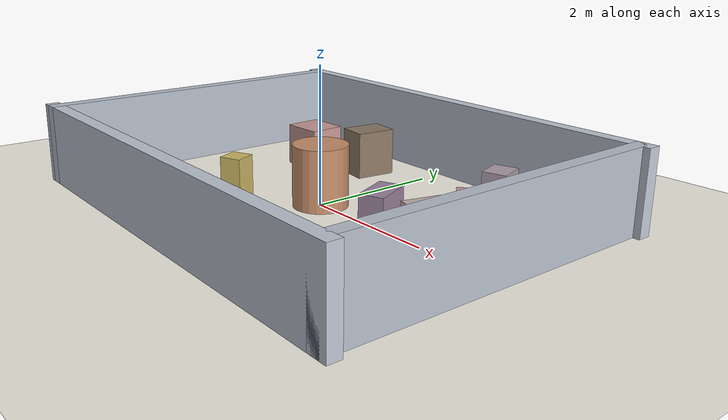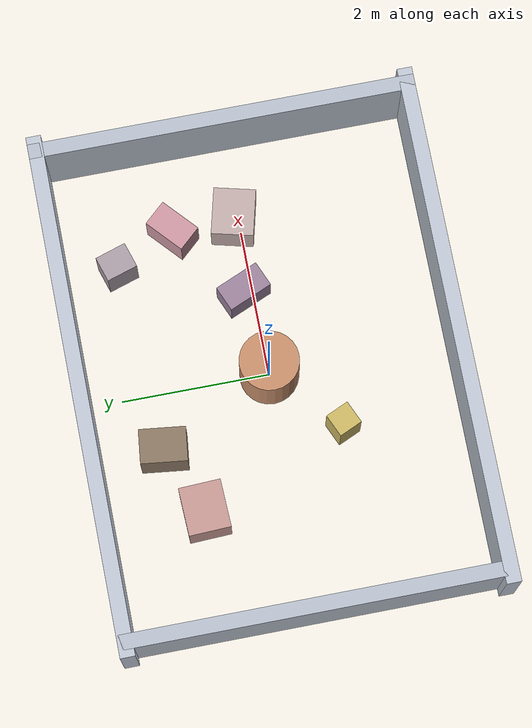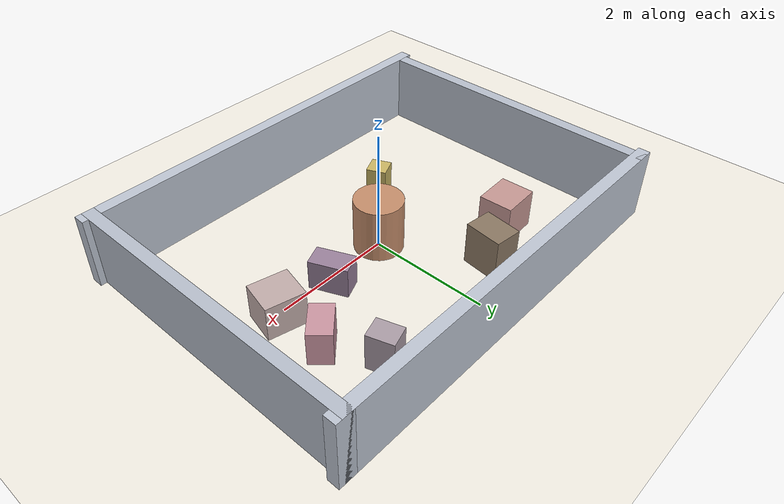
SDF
<sdf version="1.8">
          <world name="demo_pillar_room">
            <gui>
              <camera name="gzclient_camera">
                <pose>-0.5 0 12 0 1.45 0</pose>
              </camera>
            </gui>

            <physics name="1ms" type="ignored">
              <max_step_size>0.001</max_step_size>
              <real_time_factor>1</real_time_factor>
              <real_time_update_rate>1000</real_time_update_rate>
            </physics>

            <plugin name="ignition::gazebo::systems::Physics" filename="ignition-gazebo-physics-system"/>
            <plugin name="ignition::gazebo::systems::UserCommands" filename="ignition-gazebo-user-commands-system"/>
            <plugin name="ignition::gazebo::systems::SceneBroadcaster" filename="ignition-gazebo-scene-broadcaster-system"/>
            <plugin filename="ignition-gazebo-sensors-system" name="ignition::gazebo::systems::Sensors">
              <render_engine>ogre2</render_engine>
            </plugin>

            <scene>
              <ambient>0.92 0.92 0.92 1</ambient>
              <background>0.86 0.89 0.93 1</background>
              <grid>false</grid>
            </scene>

            <light type="directional" name="sun">
              <cast_shadows>true</cast_shadows>
              <pose>0 0 10 0 0 0</pose>
              <diffuse>0.8 0.8 0.8 1</diffuse>
              <specular>0.2 0.2 0.2 1</specular>
              <attenuation>
                <range>1000</range>
                <constant>0.9</constant>
                <linear>0.01</linear>
                <quadratic>0.001</quadratic>
              </attenuation>
              <direction>-0.4 0.2 -0.9</direction>
            </light>

            <model name="ground_plane">
              <static>true</static>
              <link name="link">
                <collision name="collision">
                  <geometry>
                    <plane>
                      <normal>0 0 1</normal>
                      <size>40 40</size>
                    </plane>
                  </geometry>
                </collision>
                <visual name="visual">
                  <geometry>
                    <plane>
                      <normal>0 0 1</normal>
                      <size>40 40</size>
                    </plane>
                  </geometry>
                  <material>
                    <ambient>0.96 0.94 0.9 1</ambient>
                    <diffuse>0.96 0.94 0.9 1</diffuse>
                    <specular>1 1 1 0</specular>
                  </material>
                </visual>
              </link>
            </model>

            <model name="sky_cam">
              <static>true</static>
              <link name="camera_link">
                <pose>0 0 12 1.57 1.57 0</pose>
                <sensor name="sky_cam" type="camera">
                  <camera>
                    <horizontal_fov>1.047</horizontal_fov>
                    <image>
                      <width>1024</width>
                      <height>768</height>
                    </image>
                    <clip>
                      <near>0.1</near>
                      <far>100</far>
                    </clip>
                  </camera>
                  <always_on>1</always_on>
                  <update_rate>1</update_rate>
                  <visualize>true</visualize>
                  <topic>sky_cam</topic>
                </sensor>
              </link>
            </model>

            <model name="north_wall">
              <static>true</static>
              <pose>0 2.5 0.6 0 0 0</pose>
              <link name="link">
                <collision name="collision">
                  <geometry><box><size>7.0 0.2 1.2</size></box></geometry>
                </collision>
                <visual name="visual">
                  <geometry><box><size>7.0 0.2 1.2</size></box></geometry>
                  <material><ambient>0.75 0.78 0.83 1</ambient></material>
                </visual>
              </link>
            </model>

            <model name="south_wall">
              <static>true</static>
              <pose>0 -2.5 0.6 0 0 0</pose>
              <link name="link">
                <collision name="collision">
                  <geometry><box><size>7.0 0.2 1.2</size></box></geometry>
                </collision>
                <visual name="visual">
                  <geometry><box><size>7.0 0.2 1.2</size></box></geometry>
                  <material><ambient>0.75 0.78 0.83 1</ambient></material>
                </visual>
              </link>
            </model>

            <model name="west_wall">
              <static>true</static>
              <pose>-3.3 0 0.6 0 0 0</pose>
              <link name="link">
                <collision name="collision">
                  <geometry><box><size>0.2 5.2 1.2</size></box></geometry>
                </collision>
                <visual name="visual">
                  <geometry><box><size>0.2 5.2 1.2</size></box></geometry>
                  <material><ambient>0.72 0.75 0.8 1</ambient></material>
                </visual>
              </link>
            </model>

            <model name="east_wall">
              <static>true</static>
              <pose>3.3 0 0.6 0 0 0</pose>
              <link name="link">
                <collision name="collision">
                  <geometry><box><size>0.2 5.2 1.2</size></box></geometry>
                </collision>
                <visual name="visual">
                  <geometry><box><size>0.2 5.2 1.2</size></box></geometry>
                  <material><ambient>0.72 0.75 0.8 1</ambient></material>
                </visual>
              </link>
            </model>

            <model name="main_pillar">
              <static>true</static>
              <pose>0.0 0.0 0.45 0 0 0</pose>
              <link name="link">
                <collision name="collision">
                  <geometry>
                    <cylinder><radius>0.40</radius><length>0.9</length></cylinder>
                  </geometry>
                </collision>
                <visual name="visual">
                  <geometry>
                    <cylinder><radius>0.40</radius><length>0.9</length></cylinder>
                  </geometry>
                  <material><ambient>0.78 0.56 0.42 1</ambient></material>
                </visual>
              </link>
            </model>

        <model name="scatter_box_01">
      <static>true</static>
      <pose>2.161 0.070 0.292 0 0 1.328</pose>
      <link name="link">
        <collision name="collision">
          <geometry>
            <box><size>0.567 0.636 0.584</size></box>
          </geometry>
        </collision>
        <visual name="visual">
          <geometry>
            <box><size>0.567 0.636 0.584</size></box>
          </geometry>
          <material><ambient>0.766 0.682 0.672 1</ambient></material>
        </visual>
      </link>
    </model>

<model name="scatter_box_02">
      <static>true</static>
      <pose>-0.805 1.568 0.358 0 0 -1.689</pose>
      <link name="link">
        <collision name="collision">
          <geometry>
            <box><size>0.624 0.459 0.717</size></box>
          </geometry>
        </collision>
        <visual name="visual">
          <geometry>
            <box><size>0.624 0.459 0.717</size></box>
          </geometry>
          <material><ambient>0.548 0.472 0.391 1</ambient></material>
        </visual>
      </link>
    </model>

<model name="scatter_box_03">
      <static>true</static>
      <pose>1.144 0.128 0.254 0 0 0.401</pose>
      <link name="link">
        <collision name="collision">
          <geometry>
            <box><size>0.359 0.629 0.508</size></box>
          </geometry>
        </collision>
        <visual name="visual">
          <geometry>
            <box><size>0.359 0.629 0.508</size></box>
          </geometry>
          <material><ambient>0.612 0.514 0.616 1</ambient></material>
        </visual>
      </link>
    </model>

<model name="scatter_box_04">
      <static>true</static>
      <pose>1.759 1.730 0.314 0 0 -2.836</pose>
      <link name="link">
        <collision name="collision">
          <geometry>
            <box><size>0.352 0.432 0.628</size></box>
          </geometry>
        </collision>
        <visual name="visual">
          <geometry>
            <box><size>0.352 0.432 0.628</size></box>
          </geometry>
          <material><ambient>0.674 0.619 0.658 1</ambient></material>
        </visual>
      </link>
    </model>

<model name="scatter_box_05">
      <static>true</static>
      <pose>-0.902 -0.822 0.332 0 0 -2.724</pose>
      <link name="link">
        <collision name="collision">
          <geometry>
            <box><size>0.325 0.332 0.665</size></box>
          </geometry>
        </collision>
        <visual name="visual">
          <geometry>
            <box><size>0.325 0.332 0.665</size></box>
          </geometry>
          <material><ambient>0.799 0.719 0.394 1</ambient></material>
        </visual>
      </link>
    </model>

<model name="scatter_box_06">
      <static>true</static>
      <pose>-1.708 1.185 0.325 0 0 -1.531</pose>
      <link name="link">
        <collision name="collision">
          <geometry>
            <box><size>0.564 0.646 0.650</size></box>
          </geometry>
        </collision>
        <visual name="visual">
          <geometry>
            <box><size>0.564 0.646 0.650</size></box>
          </geometry>
          <material><ambient>0.778 0.597 0.579 1</ambient></material>
        </visual>
      </link>
    </model>

<model name="scatter_box_07">
      <static>true</static>
      <pose>2.130 0.911 0.283 0 0 0.736</pose>
      <link name="link">
        <collision name="collision">
          <geometry>
            <box><size>0.594 0.370 0.567</size></box>
          </geometry>
        </collision>
        <visual name="visual">
          <geometry>
            <box><size>0.594 0.370 0.567</size></box>
          </geometry>
          <material><ambient>0.803 0.592 0.639 1</ambient></material>
        </visual>
      </link>
    </model>

          </world>
        </sdf>
